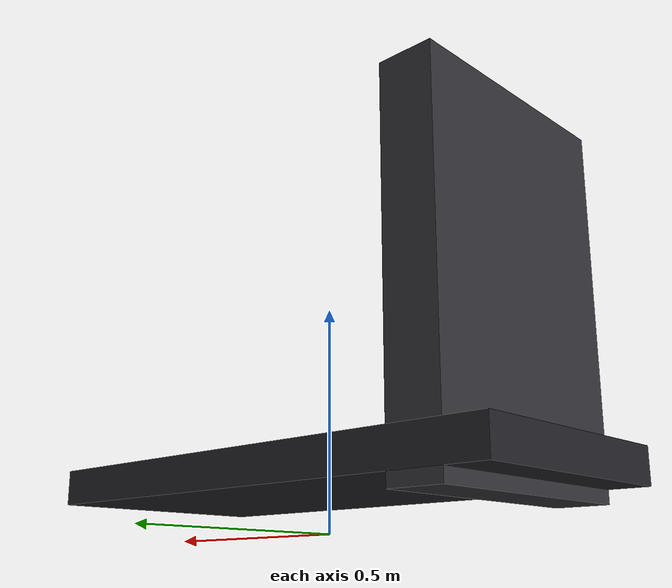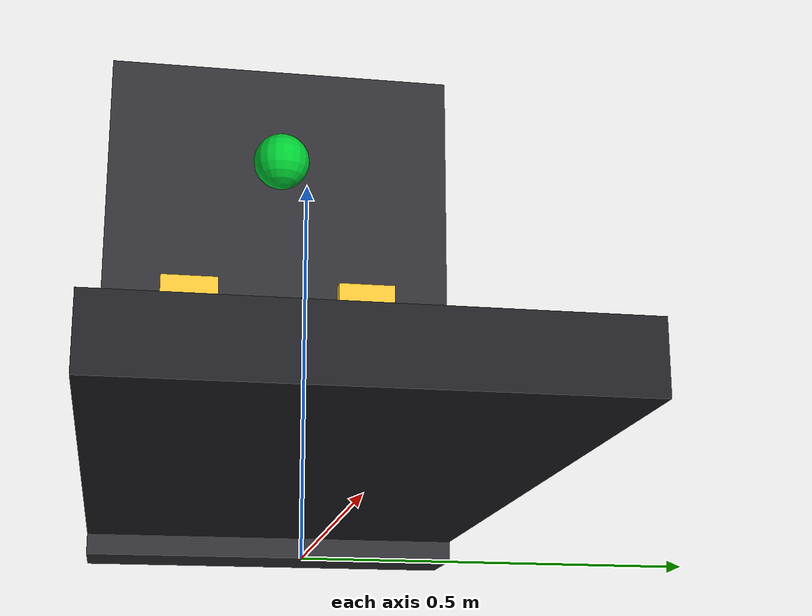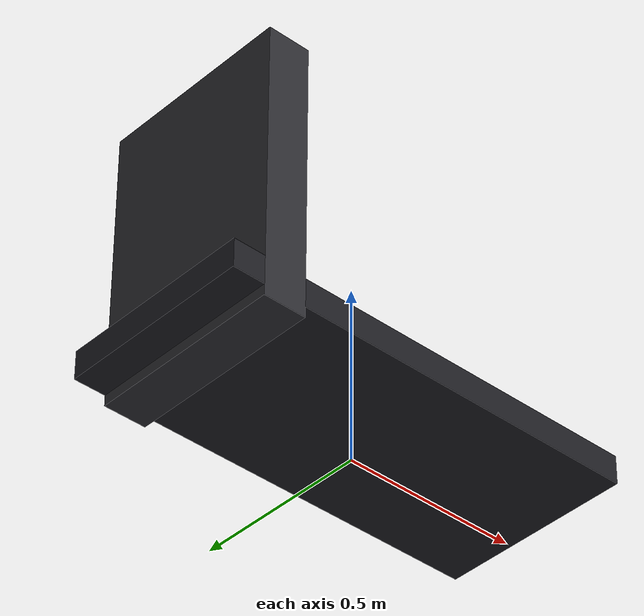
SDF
<?xml version="1.0"?>
<sdf version="1.11">
  <model name="charging_dock">
    <static>true</static>
    <link name="link">
      <collision name="collision"><pose>0 0 0.25 0 0 0</pose><geometry><box><size>0.9 0.25 0.5</size></box></geometry></collision>
      <visual name="base"><pose>0 0 0.12 0 0 0</pose><geometry><box><size>1.2 0.55 0.08</size></box></geometry><material><ambient>0.12 0.12 0.14 1</ambient><diffuse>0.12 0.12 0.14 1</diffuse></material></visual>
      <visual name="back_plate"><pose>-0.45 0 0.45 0 0 0</pose><geometry><box><size>0.12 0.55 0.8</size></box></geometry><material><ambient>0.18 0.18 0.20 1</ambient><diffuse>0.18 0.18 0.20 1</diffuse></material></visual>
      <visual name="contact_left"><pose>-0.37 -0.14 0.38 0 0 0</pose><geometry><box><size>0.025 0.09 0.20</size></box></geometry><material><ambient>0.95 0.75 0.20 1</ambient><diffuse>0.95 0.75 0.20 1</diffuse></material></visual>
      <visual name="contact_right"><pose>-0.37 0.14 0.38 0 0 0</pose><geometry><box><size>0.025 0.09 0.20</size></box></geometry><material><ambient>0.95 0.75 0.20 1</ambient><diffuse>0.95 0.75 0.20 1</diffuse></material></visual>
      <visual name="status_light"><pose>-0.36 0 0.68 0 0 0</pose><geometry><sphere><radius>0.045</radius></sphere></geometry><material><ambient>0.0 0.8 0.2 1</ambient><diffuse>0.0 0.8 0.2 1</diffuse><emissive>0.0 0.4 0.1 1</emissive></material></visual>
    </link>
  </model>
</sdf>
